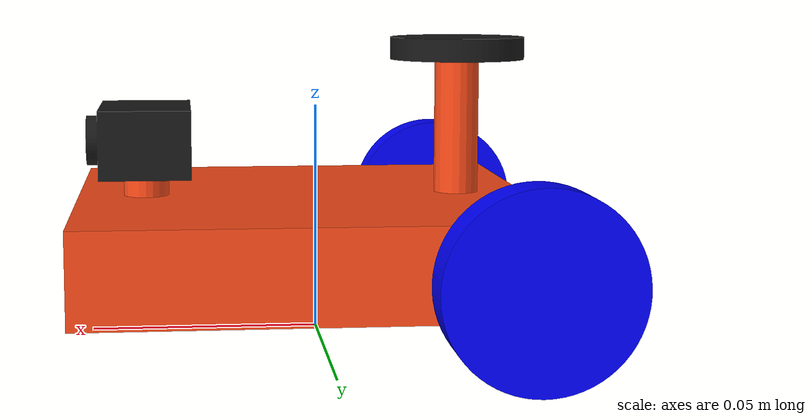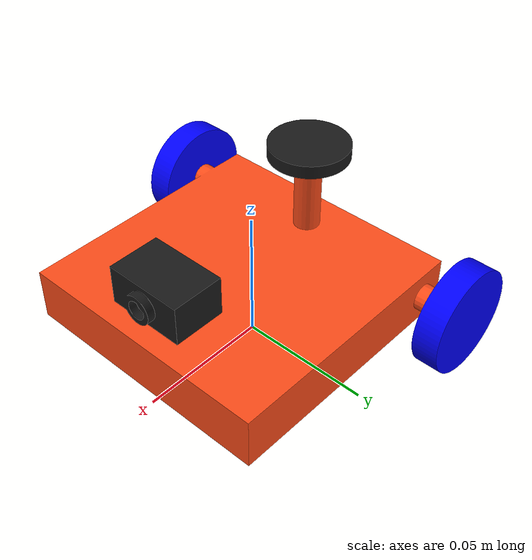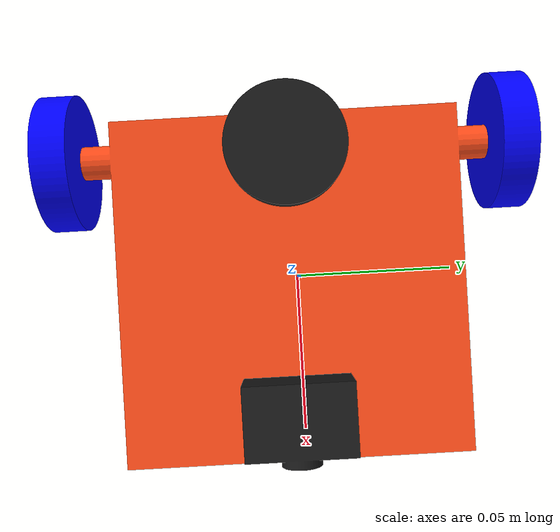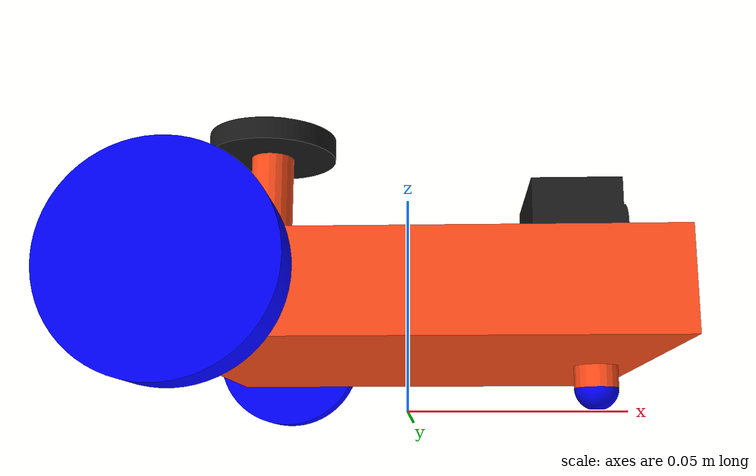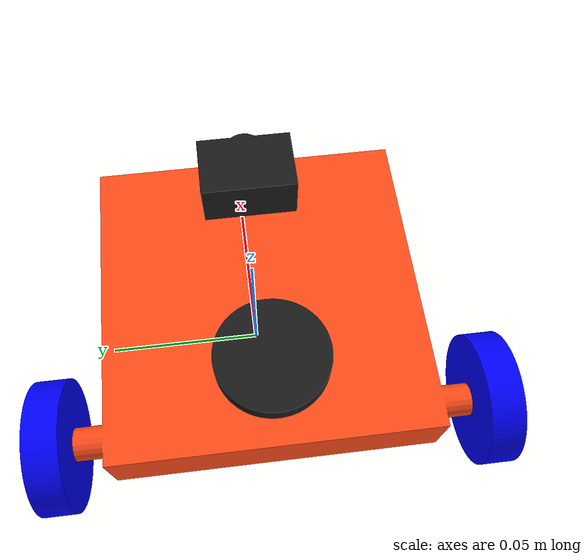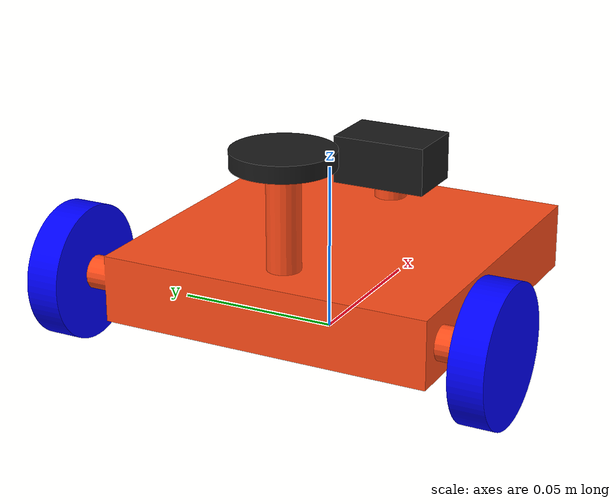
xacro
<?xml version="1.0"?>
<robot xmlns:xacro="http://www.ros.org/wiki/xacro"  name="walle_robot">

    <xacro:arg name="robot_name" default="walle"/>

    <xacro:include filename="$(find multi_robot)/description/xacro_properties.xacro"/>

    <xacro:include filename="$(find multi_robot)/description/robot_core.xacro" />
    <xacro:include filename="$(find multi_robot)/description/lidar.xacro" />
    <xacro:include filename="$(find multi_robot)/description/camera.xacro" />

    <xacro:base_robot robot_name="$(arg robot_name)"/>
    <xacro:lidar_link  robot_name="$(arg robot_name)"/>
    <xacro:camera_link  robot_name="$(arg robot_name)"/>

</robot>

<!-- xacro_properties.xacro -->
<robot name="xacro_properties" xmlns:xacro="http://www.ros.org/wiki/xacro" >

    <material name="black">
        <color rgba="0.1 0.1 0.1 1"/>
    </material>

    <material name="orange">
        <color rgba="1.0 0.3 0.1 1"/>
    </material>

    <material name="blue">
        <color rgba="0.0 0.0 1.0 1"/>
    </material>
</robot>

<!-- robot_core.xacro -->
<robot name='base_robot' xmlns:xacro="http://www.ros.org/wiki/xacro" >

    <xacro:include filename="$(find multi_robot)/description/gazebo_properties.xacro"/>

    <xacro:arg name="robot_name" default="walle"/>

    <xacro:macro name="base_robot" params="robot_name">

        <!-- BASE LINK -->
        <link name="base_link"></link>

        <!-- FOOTPRINT LINK -->
        <link name="base_footprint"/>
        <joint name="base_footprint_joint" type="fixed">
            <origin xyz="0 0 0" rpy="0 0 0" />
            <parent link="base_link"/>
            <child link="base_footprint"/>
        </joint>

        <!-- CHASSIS LINK -->
        <link name="chassis">
            <visual>
                <origin xyz="0 0 0" rpy="0 0 0"/>
                <geometry>
                    <mesh filename="file://$(find multi_robot)/meshes/base_link.stl" scale="0.001 0.001 0.001"/>
                </geometry>
              <material name="orange"/>
            </visual>
            <collision>
                <origin xyz="0 0 0" rpy="0 0 0"/>
                <geometry>
                   <mesh filename="file://$(find multi_robot)/meshes/base_link.stl" scale="0.001 0.001 0.001"/>
                </geometry>
            </collision>
            <inertial>
                <origin xyz="0.0021917888767763656 -0.0021761226653942466 0.020287744491421345" rpy="0 0 0"/>
                <mass value="1.6069922534960177"/>
                <inertia ixx="0.001412" iyy="0.001425" izz="0.002705" ixy="-0.0" iyz="0.0" ixz="1.6e-05"/>
            </inertial>
        </link>
        <joint name="chassis_joint" type="fixed">
            <parent link="base_link"/>
            <child link="chassis"/>
            <origin xyz="0.0 0.0 0.0"/>
        </joint>

        <!-- RIGHT WHEEL LINK -->
        <link name="right_wheel">
            <visual>
                <origin xyz="0.037242 0.062176 -0.02" rpy="0 0 0"/>
                <geometry>
                    <mesh filename="file://$(find multi_robot)/meshes/wheel_R__1.stl" scale="0.001 0.001 0.001"/>
                </geometry>
                <material name="blue"/>
            </visual>
            <collision>
                <origin xyz="0.037242 0.062176 -0.02" rpy="0 0 0"/>
                <geometry>
                    <mesh filename="file://$(find multi_robot)/meshes/wheel_R__1.stl" scale="0.001 0.001 0.001"/>
                </geometry>
            </collision>
            <inertial>
              <origin xyz="-3.136234283315775e-07 -0.005000122665405275 0.0" rpy="0 0 0"/>
              <mass value="0.09864600932271948"/>
              <inertia ixx="1.1e-05" iyy="2e-05" izz="1.1e-05" ixy="-0.0" iyz="0.0" ixz="0.0"/>
            </inertial>
        </link>
        <joint name="right_wheel_joint" type="continuous">
            <parent link="chassis"/>
            <child link="right_wheel"/>
            <origin xyz="-0.037242 -0.072176 0.02" rpy="0 0 -${pi}"/>
            <axis xyz="0.0 -1.0 0.0"/>
        </joint>

        <!-- RIGHT WHEEL LINK -->
        <link name="left_wheel">
          <visual>
              <origin xyz="0.037242 -0.057824 -0.02" rpy="0 0 0"/>
              <geometry>
                  <mesh filename="file://$(find multi_robot)/meshes/wheel_L_1.stl" scale="0.001 0.001 0.001"/>
              </geometry>
              <material name="blue"/>
          </visual>
          <collision>
              <origin xyz="0.037242 -0.057824 -0.02" rpy="0 0 0"/>
              <geometry>
                  <mesh filename="file://$(find multi_robot)/meshes/wheel_L_1.stl" scale="0.001 0.001 0.001"/>
              </geometry>
          </collision>
          <inertial>
              <origin xyz="-3.136234283523942e-07 0.004999877334594713 -3.469446951953614e-18" rpy="0 0 0"/>
              <mass value="0.0986460093227195"/>
              <inertia ixx="1.1e-05" iyy="2e-05" izz="1.1e-05" ixy="0.0" iyz="0.0" ixz="0.0"/>
          </inertial>
        </link>
        <joint name="left_wheel_joint" type="continuous">
            <parent link="chassis"/>
            <child link="left_wheel"/>
            <origin xyz="-0.037242 0.057824 0.02" rpy="0 ${pi/2} -${2*pi}"/>
            <axis xyz="-0.0 1.0 0.0"/>
        </joint>

        <!-- CASTER WHEEL LINK -->
        <link name="caster_wheel">
            <visual>
                <origin xyz="-0.042758 0.002176 -0.005" rpy="0 0 0"/>
                <geometry>
                    <mesh filename="file://$(find multi_robot)/meshes/caster_wheel_1.stl" scale="0.001 0.001 0.001"/>
                </geometry>
                <material name="blue"/>
            </visual>
            <collision>
                <origin xyz="-0.042758 0.002176 -0.005" rpy="0 0 0"/>
                <geometry>
                    <mesh filename="file://$(find multi_robot)/meshes/caster_wheel_1.stl" scale="0.001 0.001 0.001"/>
                </geometry>
            </collision>
            <inertial>
                <origin xyz="-3.136234283454553e-07 -1.2266540526644637e-07 -0.001874999999999999" rpy="0 0 0"/>
                <mass value="0.002055125194223321"/>
                <inertia ixx="0.0" iyy="0.0" izz="0.0" ixy="0.0" iyz="-0.0" ixz="0.0"/>
            </inertial>
        </link>
        <joint name="caster_wheel_joint" type="fixed">
          <parent link="chassis"/>
          <child link="caster_wheel"/>
          <origin xyz="0.042758 -0.002176 0.005" rpy="0 0 0"/>
        </joint>

        <!-- SIMULATION DETAILS -->
        <xacro:walle_sim robot_name="$(arg robot_name)"/>
    </xacro:macro>

</robot>

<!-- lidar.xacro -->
<robot name="lidar" xmlns:xacro="http://www.ros.org/wiki/xacro" >

    <xacro:macro name="lidar_link" params="robot_name">

        <joint name="laser_joint" type="fixed">
            <parent link="chassis"/>
            <child link="laser_frame"/>
            <origin xyz="-0.032242 -0.002176 0.06" rpy="0 0 0"/>
        </joint>

        <link name="laser_frame">
            <visual>
                <origin xyz="0.032242 0.002176 -0.06" rpy="0 0 0"/>
                <geometry>
                    <mesh filename="file://$(find multi_robot)/meshes/lidar_1.stl" scale="0.001 0.001 0.001"/>
                </geometry>
                <material name="black"/>
            </visual>
            <collision>
                <origin xyz="0.032242 0.002176 -0.06" rpy="0 0 0"/>
                <geometry>
                  <mesh filename="file://$(find multi_robot)/meshes/lidar_1.stl" scale="0.001 0.001 0.001"/>
                </geometry>
            </collision>
            <inertial>
                <origin xyz="-3.136234283454553e-07 -1.2266540527902312e-07 0.002500000000000016" rpy="0 0 0"/>
                <mass value="0.02774419012201485"/>
                <inertia ixx="2e-06" iyy="2e-06" izz="3e-06" ixy="0.0" iyz="-0.0" ixz="-0.0"/>
            </inertial>
        </link>

        <gazebo reference="laser_frame">
            <material>Gazebo/Black</material>

            <sensor name="laser" type="ray">
                <pose> 0 0 0 0 0 0 </pose>
                <always_on>true</always_on>
                <visualize>true</visualize>
                <update_rate>10</update_rate>
                <ray>
                    <scan>
                        <horizontal>
                        <samples>360</samples>
                        <resolution>1.000000</resolution>
                        <min_angle>-3.14</min_angle>
                        <max_angle>3.14</max_angle>
                        </horizontal>
                    </scan>
                    <range>
                        <min>0.3</min>
                        <max>12</max>
                        <resolution>0.015000</resolution>
                    </range>
                    <noise>
                        <type>gaussian</type>
                        <mean>0.0</mean>
                        <stddev>0.01</stddev>
                    </noise>
                </ray>
                <plugin name="laser_controller" filename="libgazebo_ros_ray_sensor.so">
                    <ros>
                        <!-- this from new -->
                        <namespace>${robot_name}</namespace>
                        <remapping>~/out:=scan</remapping>
                    </ros>
                    <output_type>sensor_msgs/LaserScan</output_type>
                    <frame_name>${robot_name}/laser_frame</frame_name>
                </plugin>

            </sensor>
        </gazebo>

    </xacro:macro>

</robot>

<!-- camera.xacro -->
<robot name="camera" xmlns:xacro="http://www.ros.org/wiki/xacro" >

    <xacro:macro name="camera_link" params="robot_name">

        <link name="camera_link">
            <visual>
                <origin xyz="-0.037758 0.002176 -0.035" rpy="0 0 0"/>
                <geometry>
                  <mesh filename="file://$(find multi_robot)/meshes/camera_1.stl" scale="0.001 0.001 0.001"/>
                </geometry>
                <material name="black"/>
            </visual>
            <collision>
                <origin xyz="-0.037758 0.002176 -0.035" rpy="0 0 0"/>
                <geometry>
                  <mesh filename="file://$(find multi_robot)/meshes/camera_1.stl" scale="0.001 0.001 0.001"/>
                </geometry>
            </collision>
            <inertial>
                <origin xyz="0.0002152622789570527 -1.226654322166766e-07 0.007496950338409206" rpy="0 0 0"/>
                <mass value="0.07199968673383587"/>
                <inertia ixx="7e-06" iyy="4e-06" izz="8e-06" ixy="0.0" iyz="-0.0" ixz="0.0"/>
            </inertial>
        </link>

        <joint name="camera_joint" type="fixed">
            <parent link="chassis"/>
            <child link="camera_link"/>
            <origin xyz="0.037758 -0.002176 0.035" rpy="0 0 0"/>
        </joint>

        <link name="camera_link_optical"></link>

        <joint name="camera_optical_joint" type="fixed">
            <parent link="camera_link"/>
            <child link="camera_link_optical"/>
            <origin xyz="0 0 0" rpy="${-pi/2} 0 ${-pi/2}"/>
        </joint>

        <gazebo reference="camera_link">
            <material>Gazebo/Black</material>

            <sensor name="camera" type="camera">
                <pose> 0 0 0 0 0 0 </pose>
                <always_on>true</always_on>
                <visualize>true</visualize>
                <update_rate>10</update_rate>
                <camera>
                    <horizontal_fov>1.089</horizontal_fov>
                    <image>
                        <format>R8G8B8</format>
                        <width>640</width>
                        <height>480</height>
                    </image>
                    <clip>
                        <near>0.05</near>
                        <far>8.0</far>
                    </clip>
                </camera>
                <plugin name="camera_controller" filename="libgazebo_ros_camera.so">
                    <ros>
                        <!-- this from new -->
                        <namespace>${robot_name}</namespace>
                        <remapping>~/out:=image</remapping>
                    </ros>
                    <frame_name>${robot_name}/camera_link_optical</frame_name>
                </plugin>

            </sensor>
        </gazebo>

    </xacro:macro>

</robot>
